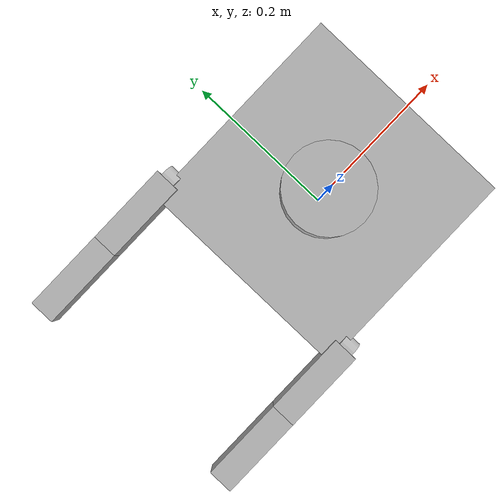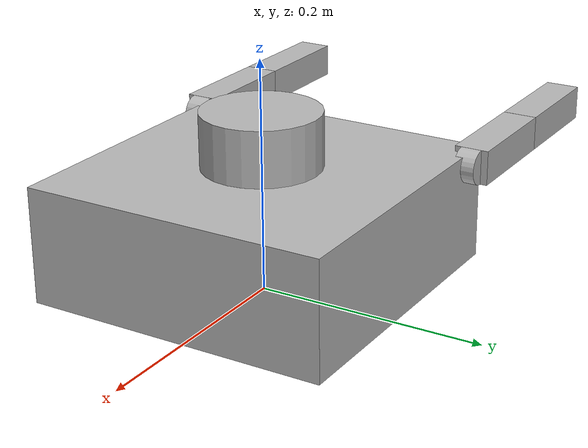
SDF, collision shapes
<?xml version="1.0"?>
<sdf version="1.5">
    <!-- Directory name must same model -->
    <model name="turtlebot3_my_model">
        <!-- Each model link name -->
        <link name="base">
            <!--choose center of mass, inertia, mass -->
            <inertial>
                <!-- center of mass pose -->
                <pose>0 0 0.06 0 0 0</pose>
                <inertia>
                    <ixx>0.001</ixx>
                    <ixy>0.000</ixy>
                    <ixz>0.000</ixz>
                    <iyy>0.001</iyy>
                    <iyz>0.000</iyz>
                    <izz>0.001</izz>
                </inertia>
                <mass>1.0</mass>
            </inertial>

            <!-- Deliver robot base -->
            <collision name="base_collision">
                <pose>0 0 0.06 0 0 0</pose>
                <geometry>
                    <box>
                        <!-- origin standpoint -->
                        <size>0.265 0.265 0.1</size>
                    </box>
                </geometry>
            </collision>

            <visual name="base_visual">
                <pose>0 0 0.06 0 0 0</pose>
                <geometry>
                    <box>
                        <size>0.265 0.265 0.1</size>
                    </box>
                </geometry>
            </visual>

            <collision name="caster_collision">
                <pose>-0.11 0 0.005 0 0 0</pose>
                <geometry>
                    <sphere>
                        <radius>0.005</radius>
                    </sphere>
                </geometry>
                <surface>
                    <friction>
                        <ode>
                            <mu>100000.0</mu>
                            <mu2>100000.0</mu2>
                            <fdir1>0 0 0</fdir1>
                            <slip1>0</slip1>
                            <slip2>0</slip2>
                        </ode>
                    </friction>
                </surface>
            </collision>

            <visual name="caster_visual">
                <pose>-0.11 0 0.005 0 0 0</pose>
                <geometry>
                    <sphere>
                        <radius>0.005000</radius>
                    </sphere>
                </geometry>
            </visual>
        </link>

<!--_____________________ Lidar ______________________-->

        <!-- Deliver robot lidar -->
        <link name="lidar">
            <inertial>
                <pose>0 0 0.13 0 0 0</pose>
                <inertia>
                    <ixx>0.001</ixx>
                    <ixy>0.000</ixy>
                    <ixz>0.000</ixz>
                    <iyy>0.001</iyy>
                    <iyz>0.000</iyz>
                    <izz>0.001</izz>
                </inertia>
                <mass>0.125</mass>
            </inertial>

            <collision name="lidar_sensor_collision">
                <pose>0 0 0.13 0 0 0</pose>
                <geometry>
                    <cylinder>
                        <radius>0.0508</radius>
                        <length>0.055</length>
                    </cylinder>
                </geometry>
            </collision>

            <visual name="lidar_sensor_visual">
                <pose>-0.012 0 0.14 0 0 0</pose>
                <geometry>
                    <mesh>
                        <uri>model://turtlebot3_burger/meshes/lds.dae</uri>
                        <scale>0.001 0.001 0.001</scale>
                    </mesh>
                </geometry>
            </visual>

            <sensor name="hls_lfcd_lds" type="ray">
                <always_on>1</always_on>
                <visualize>0</visualize>
                <pose>-0.012 0 0.14 0 0 0</pose>
                <update_rate>1800</update_rate>
                <ray>
                    <scan>
                        <horizontal>
                            <samples>360</samples>
                            <resolution>1.000000</resolution>
                            <min_angle>0.000000</min_angle>
                            <max_angle>6.280000</max_angle>
                        </horizontal>
                    </scan>
                    <range>
                        <min>0.120000</min>
                        <max>3.5</max>
                        <resolution>0.015000</resolution>
                    </range>
                    <noise>
                        <type>gaussian</type>
                        <mean>0.0</mean>
                        <stddev>0.01</stddev>
                    </noise>
                </ray>
            </sensor>
        </link>

<!--_____________________ Wheel ______________________-->

        <!-- Deliver robot left wheel -->
        <link name="left_wheel">
            <inertial>
                <pose>0.07 0.11 0.033 -1.57 0 0</pose>
                <inertia>
                <ixx>0.001</ixx>
                <ixy>0.000</ixy>
                <ixz>0.000</ixz>
                <iyy>0.001</iyy>
                <iyz>0.000</iyz>
                <izz>0.001</izz>
                </inertia>
                <mass>0.1</mass>
            </inertial>

            <collision name="left_wheel_collision">
                <pose>0.07 0.11 0.033 -1.57 0 0</pose>
                <geometry>
                    <cylinder>
                        <radius>0.033</radius>
                        <length>0.018</length>
                    </cylinder>
                </geometry>
                <surface>
                    <friction>
                        <ode>
                            <mu>100000.0</mu>
                            <mu2>100000.0</mu2>
                            <fdir1>0 0 0</fdir1>
                            <slip1>0.0</slip1>
                            <slip2>0.0</slip2>
                        </ode>
                    </friction>
                </surface>
            </collision>

            <visual name="left_wheel_visual">
                <pose>0.07 0.11 0.033 -1.57 0 0</pose>
                <geometry>
                    <cylinder>
                        <radius>0.033</radius>
                        <length>0.018</length>
                    </cylinder>
                </geometry>
            </visual>
        </link>

        <!-- Deliver robot right wheel -->
        <link name="right_wheel">
            <inertial>
                <pose>0.07 -0.11 0.033 -1.57 0 0</pose>
                <inertia>
                    <ixx>0.001</ixx>
                    <ixy>0.000</ixy>
                    <ixz>0.000</ixz>
                    <iyy>0.001</iyy>
                    <iyz>0.000</iyz>
                    <izz>0.001</izz>
                </inertia>
                <mass>0.1</mass>
            </inertial>

            <collision name="right_wheel_collision">
                <pose>0.07 -0.11 0.033 -1.57 0 0</pose>
                <geometry>
                    <cylinder>
                        <radius>0.033</radius>
                        <length>0.018</length>
                    </cylinder>
                </geometry>
                <surface>
                    <friction>
                    <ode>
                        <mu>100000.0</mu>
                        <mu2>100000.0</mu2>
                        <fdir1>0 0 0</fdir1>
                        <slip1>0.0</slip1>
                        <slip2>0.0</slip2>
                    </ode>
                </friction>
                </surface>
            </collision>

            <visual name="right_wheel_visual">
                <pose>0.07 -0.11 0.033 -1.57 0 0</pose>
                <geometry>
                     <cylinder>
                        <radius>0.033</radius>
                        <length>0.018</length>
                    </cylinder>
                </geometry>
            </visual>
        </link>

<!--_____________________ Robot arm 1 ______________________-->

        <!-- Deliver robot joint_left 1 -->
        <link name="joint1_left">
            <inertial>
                <pose>-0.11 -0.135 0.1 1.57 0 0</pose>
                <inertia>
                    <ixx>0.001</ixx>
                    <ixy>0.000</ixy>
                    <ixz>0.000</ixz>
                    <iyy>0.001</iyy>
                    <iyz>0.000</iyz>
                    <izz>0.001</izz>
                </inertia>
                <mass>0.1</mass>
            </inertial>

            <collision name="joint1_left_collision">
                <pose>-0.11 -0.135 0.1 1.57 0 0</pose>
                <geometry>
                    <cylinder>
                        <radius>0.015</radius>
                        <length>0.018</length>
                    </cylinder>
                </geometry>
                <surface>
                    <friction>
                    <ode>
                        <mu>100000.0</mu>
                        <mu2>100000.0</mu2>
                        <fdir1>0 0 0</fdir1>
                        <slip1>0.0</slip1>
                        <slip2>0.0</slip2>
                    </ode>
                </friction>
                </surface>
            </collision>

            <visual name="joint1_left_visual">
                <pose>-0.11 -0.135 0.1 1.57 0 0</pose>
                <geometry>
                    <cylinder>
                        <radius>0.015</radius>
                        <length>0.018</length>
                    </cylinder>
                </geometry>
            </visual>
        </link>

        <!-- Deliver robot joint_right 1 -->
        <link name="joint1_right">
            <inertial>
                <pose>-0.11 0.135 0.1 1.57 0 0</pose>
                <inertia>
                    <ixx>0.001</ixx>
                    <ixy>0.000</ixy>
                    <ixz>0.000</ixz>
                    <iyy>0.001</iyy>
                    <iyz>0.000</iyz>
                    <izz>0.001</izz>
                </inertia>
                <mass>0.1</mass>
            </inertial>

            <collision name="joint1_right_collision">
                <pose>-0.11 0.135 0.1 1.57 0 0</pose>
                <geometry>
                    <cylinder>
                        <radius>0.015</radius>
                        <length>0.018</length>
                    </cylinder>
                </geometry>
                <surface>
                    <friction>
                    <ode>
                        <mu>100000.0</mu>
                        <mu2>100000.0</mu2>
                        <fdir1>0 0 0</fdir1>
                        <slip1>0.0</slip1>
                        <slip2>0.0</slip2>
                    </ode>
                </friction>
                </surface>
            </collision>

            <visual name="joint1_right_visual">
                <pose>-0.11 0.135 0.1 1.57 0 0</pose>
                <geometry>
                    <cylinder>
                        <radius>0.015</radius>
                        <length>0.018</length>
                    </cylinder>
                </geometry>
            </visual>
        </link>

        <!-- Deliver robot link1_left -->
        <link name="link1_left">
            <inertial>
                <pose>-0.16 0.135 0.1 0 0 0</pose>
                <inertia>
                    <ixx>0.001</ixx>
                    <ixy>0.000</ixy>
                    <ixz>0.000</ixz>
                    <iyy>0.001</iyy>
                    <iyz>0.000</iyz>
                    <izz>0.001</izz>
                </inertia>
                <mass>0.1</mass>
            </inertial>

            <collision name="link1_left_collision">
                <pose>-0.16 0.135 0.1 0 0 0</pose>
                <geometry>
                    <box>
                        <size>0.1 0.03 0.03</size>
                    </box>
                </geometry>
                <surface>
                    <friction>
                    <ode>
                        <mu>100000.0</mu>
                        <mu2>100000.0</mu2>
                        <fdir1>0 0 0</fdir1>
                        <slip1>0.0</slip1>
                        <slip2>0.0</slip2>
                    </ode>
                </friction>
                </surface>
            </collision>

            <visual name="link1_left_visual">
                <pose>-0.16 0.135 0.1 0 0 0</pose>
                <geometry>
                    <box>
                        <size>0.1 0.03 0.03</size>
                    </box>
                </geometry>
            </visual>
        </link>

        <!-- Deliver robot link1_right -->
        <link name="link1_right">
            <inertial>
                <pose>-0.16 -0.135 0.1 0 0 0</pose>
                <inertia>
                    <ixx>0.001</ixx>
                    <ixy>0.000</ixy>
                    <ixz>0.000</ixz>
                    <iyy>0.001</iyy>
                    <iyz>0.000</iyz>
                    <izz>0.001</izz>
                </inertia>
                <mass>0.1</mass>
            </inertial>

            <collision name="link1_right_collision">
                <pose>-0.16 -0.135 0.1 0 0 0</pose>
                <geometry>
                    <box>
                        <size>0.1 0.03 0.03</size>
                    </box>
                </geometry>
                <surface>
                    <friction>
                    <ode>
                        <mu>100000.0</mu>
                        <mu2>100000.0</mu2>
                        <fdir1>0 0 0</fdir1>
                        <slip1>0.0</slip1>
                        <slip2>0.0</slip2>
                    </ode>
                </friction>
                </surface>
            </collision>

            <visual name="link1_right_visual">
                <pose>-0.16 -0.135 0.1 0 0 0</pose>
                <geometry>
                    <box>
                        <size>0.1 0.03 0.03</size>
                    </box>
                </geometry>
            </visual>
        </link>

<!--_____________________ Robot arm 2 ______________________-->

        <!-- Deliver robot joint_left 2 -->
        <link name="joint2_left">
            <inertial>
                <pose>-0.21 -0.135 0.1 1.57 0 0</pose>
                <inertia>
                    <ixx>0.001</ixx>
                    <ixy>0.000</ixy>
                    <ixz>0.000</ixz>
                    <iyy>0.001</iyy>
                    <iyz>0.000</iyz>
                    <izz>0.001</izz>
                </inertia>
                <mass>0.1</mass>
            </inertial>

            <collision name="joint2_left_collision">
                <pose>-0.21 -0.135 0.1 1.57 0 0</pose>
                <geometry>
                    <cylinder>
                        <radius>0.015</radius>
                        <length>0.018</length>
                    </cylinder>
                </geometry>
                <surface>
                    <friction>
                    <ode>
                        <mu>100000.0</mu>
                        <mu2>100000.0</mu2>
                        <fdir1>0 0 0</fdir1>
                        <slip1>0.0</slip1>
                        <slip2>0.0</slip2>
                    </ode>
                </friction>
                </surface>
            </collision>

            <visual name="joint2_left_visual">
                <pose>-0.21 -0.135 0.1 1.57 0 0</pose>
                <geometry>
                    <cylinder>
                        <radius>0.015</radius>
                        <length>0.018</length>
                    </cylinder>
                </geometry>
            </visual>
        </link>

        <!-- Deliver robot joint_right 2 -->
        <link name="joint2_right">
            <inertial>
                <pose>-0.21 0.135 0.1 1.57 0 0</pose>
                <inertia>
                    <ixx>0.001</ixx>
                    <ixy>0.000</ixy>
                    <ixz>0.000</ixz>
                    <iyy>0.001</iyy>
                    <iyz>0.000</iyz>
                    <izz>0.001</izz>
                </inertia>
                <mass>0.1</mass>
            </inertial>

            <collision name="joint2_right_collision">
                <pose>-0.21 0.135 0.1 1.57 0 0</pose>
                <geometry>
                    <cylinder>
                        <radius>0.015</radius>
                        <length>0.018</length>
                    </cylinder>
                </geometry>
                <surface>
                    <friction>
                    <ode>
                        <mu>100000.0</mu>
                        <mu2>100000.0</mu2>
                        <fdir1>0 0 0</fdir1>
                        <slip1>0.0</slip1>
                        <slip2>0.0</slip2>
                    </ode>
                </friction>
                </surface>
            </collision>

            <visual name="joint2_right_visual">
                <pose>-0.21 0.135 0.1 1.57 0 0</pose>
                <geometry>
                    <cylinder>
                        <radius>0.015</radius>
                        <length>0.018</length>
                    </cylinder>
                </geometry>
            </visual>
        </link>

        <!-- Deliver robot link2_left -->
        <link name="link2_left">
            <inertial>
                <pose>-0.26 0.135 0.1 0 0 0</pose>
                <inertia>
                    <ixx>0.001</ixx>
                    <ixy>0.000</ixy>
                    <ixz>0.000</ixz>
                    <iyy>0.001</iyy>
                    <iyz>0.000</iyz>
                    <izz>0.001</izz>
                </inertia>
                <mass>0.1</mass>
            </inertial>

            <collision name="link2_left_collision">
                <pose>-0.26 0.135 0.1 0 0 0</pose>
                <geometry>
                    <box>
                        <size>0.1 0.03 0.03</size>
                    </box>
                </geometry>
                <surface>
                    <friction>
                    <ode>
                        <mu>100000.0</mu>
                        <mu2>100000.0</mu2>
                        <fdir1>0 0 0</fdir1>
                        <slip1>0.0</slip1>
                        <slip2>0.0</slip2>
                    </ode>
                </friction>
                </surface>
            </collision>

            <visual name="link2_lwheel_right_linkeft_visual">
                <pose>-0.26 0.135 0.1 0 0 0</pose>
                <geometry>
                    <box>
                        <size>0.1 0.03 0.03</size>
                    </box>
                </geometry>
            </visual>
        </link>

        <!-- Deliver robot link2_right -->
        <link name="link2_right">
            <inertial>
                <pose>-0.26 -0.135 0.1 0 0 0</pose>
                <inertia>
                    <ixx>0.001</ixx>
                    <ixy>0.000</ixy>
                    <ixz>0.000</ixz>
                    <iyy>0.001</iyy>
                    <iyz>0.000</iyz>
                    <izz>0.001</izz>
                </inertia>
                <mass>0.1</mass>
            </inertial>

            <collision name="link2_right_collision">
                <pose>-0.26 -0.135 0.1 0 0 0</pose>
                <geometry>
                    <box>
                        <size>0.1 0.03 0.03</size>
                    </box>
                </geometry>
                <surface>
                    <friction>
                    <ode>
                        <mu>100000.0</mu>
                        <mu2>100000.0</mu2>
                        <fdir1>0 0 0</fdir1>
                        <slip1>0.0</slip1>
                        <slip2>0.0</slip2>
                    </ode>
                </friction>
                </surface>
            </collision>

            <visual name="link2_right_visual">
                <pose>-0.26 -0.135 0.1 0 0 0</pose>
                <geometry>
                    <box>
                        <size>0.1 0.03 0.03</size>
                    </box>
                </geometry>
            </visual>
        </link>

<!--_____________________ Joint ______________________-->

        <!-- link & link connection -->
        <joint name="left_wheel_joint" type="revolute">
            <parent>base</parent>
            <child>left_wheel</child>
            <pose>0.07 0.11 0.033 0 -1.57 0</pose>
            <axis>
                <xyz>0 1 0</xyz>
            </axis>
        </joint>

        <joint name="right_wheel_joint" type="revolute">
            <parent>base</parent>
            <child>right_wheel</child>
            <pose>0.07 -0.11 0.033 0 -1.57 0</pose>
            <axis>
                <xyz>0 1 0</xyz>
            </axis>
        </joint>

        <joint name="lidar_joint" type="fixed">
            <parent>base</parent>
            <child>lidar</child>
            <pose>-0.012 0 0.13 0 0 0</pose>
            <axis>
                <xyz>0 0 1</xyz>
                <use_parent_model_frame>true</use_parent_model_frame>
            </axis>
        </joint>

        <joint name="joint1_left_joint" type="revolute">
            <parent>base</parent>
            <child>joint1_left</child>
            <!--pose rpy can change xyz-->
            <pose>-0.11 -0.135 0.1 0 0 0</pose>
            <axis>
                <xyz>0 1 0</xyz>
            </axis>
        </joint>

        <joint name="joint1_right_joint" type="revolute">
            <parent>base</parent>
            <child>joint1_right</child>
            <pose>-0.11 0.135 0.1 0 0 0</pose>
            <axis>
                <xyz>0 1 0</xyz>
            </axis>
        </joint>

        <joint name="link1_left_joint" type="revolute">
            <parent>joint1_left</parent>
            <child>link1_left</child>
            <pose>-0.11 -0.135 0.1 0 0 0</pose>
            <axis>
                <xyz>0 1 0</xyz>
            </axis>
        </joint>

        <joint name="link1_right_joint" type="revolute">
            <parent>joint1_right</parent>
            <child>link1_right</child>
            <pose>-0.11 0.135 0.1 0 0 0</pose>
            <axis>
                <xyz>0 1 0</xyz>
            </axis>
        </joint>

        <joint name="joint2_left_joint" type="revolute">
            <parent>link1_left</parent>
            <child>joint2_left</child>
            <pose>-0.21 -0.135 0.1 0 0 0</pose>
            <axis>
                <xyz>0 1 0</xyz>
            </axis>
        </joint>

        <joint name="joint2_right_joint" type="revolute">
            <parent>link1_right</parent>
            <child>joint2_right</child>
            <pose>-0.21 0.135 0.1 0 0 0</pose>
            <axis>
                <xyz>0 1 0</xyz>
            </axis>
        </joint>

        <joint name="link2_left_joint" type="revolute">
            <parent>joint2_left</parent>
            <child>link2_left</child>
            <pose>-0.21 -0.135 0.1 0 0 0</pose>
            <axis>
                <xyz>0 1 0</xyz>
            </axis>
        </joint>

        <joint name="link2_right_joint" type="revolute">
            <parent>joint2_right</parent>
            <child>link2_right</child>
            <pose>-0.21 0.135 0.1 0 0 0</pose>
            <axis>
                <xyz>0 1 0</xyz>
            </axis>
        </joint>
    </model>
</sdf>
